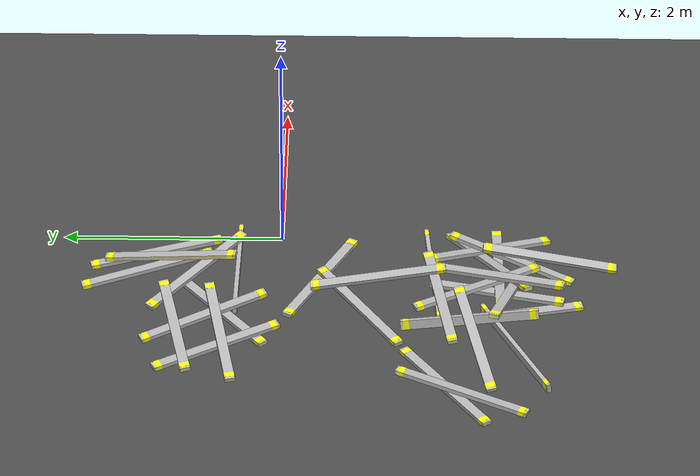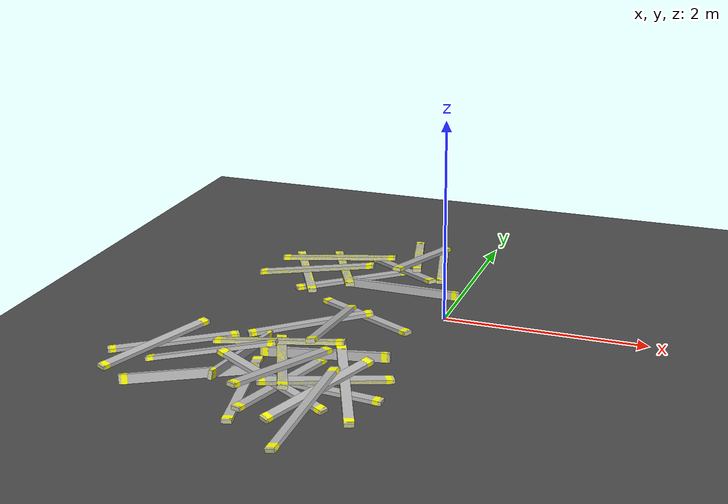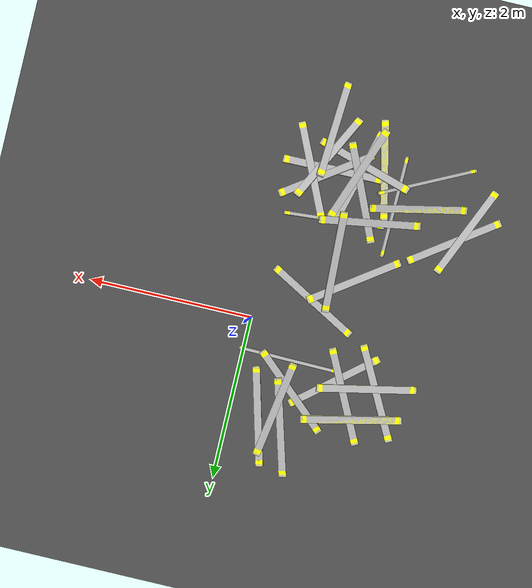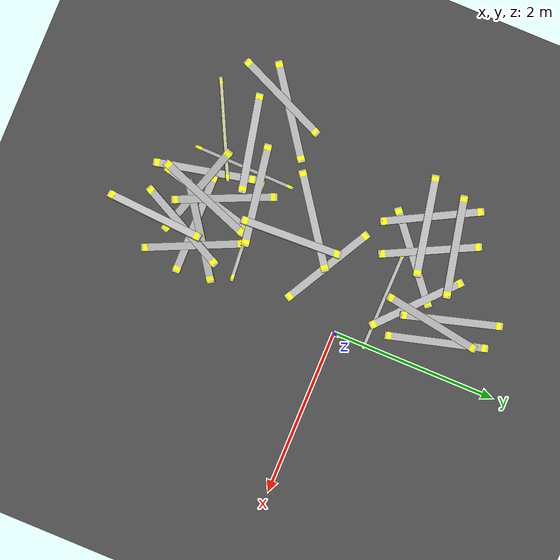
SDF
<sdf version="1.6">
 <world name="default">
  <model name="ground_plane">
   <static>1</static>
   <link name="link">
    <collision name="collision">
     <geometry><plane><normal>0 0 1</normal><size>100 100</size></plane></geometry>
     <surface><friction><ode><mu>100</mu><mu2>50</mu2></ode></friction></surface>
    </collision>
    <visual name="visual">
     <cast_shadows>0</cast_shadows>
     <geometry><plane><normal>0 0 1</normal><size>100 100</size></plane></geometry>
     <material>
      <script><uri>file://media/materials/scripts/gazebo.material</uri><name>Gazebo/Grey</name></script>
     </material>
    </visual>
   </link>
  </model>
  <model name="asphalt_plane">
   <static>1</static>
   <link name="link">
    <collision name="collision"><geometry><box><size>20 20 0.1</size></box></geometry></collision>
    <visual name="visual">
     <cast_shadows>0</cast_shadows>
     <geometry><box><size>20 20 0.1</size></box></geometry>
     <material>
      <script>
       <uri>model://asphalt_plane/materials/scripts</uri>
       <uri>model://asphalt_plane/materials/textures</uri>
       <name>vrc/asphalt</name>
      </script>
     </material>
    </visual>
   </link>
   <pose>0.013797 -0.037077 0 0 -0 0</pose>
  </model>
  <model name="lumber_2x4x48_clone">
   <link name="link">
    <inertial>
     <mass>1.4111</mass>
     <inertia><ixx>0.0011</ixx><ixy>0</ixy><ixz>0</ixz><iyy>0.1771</iyy><iyz>0</iyz><izz>0.1763</izz></inertia>
    </inertial>
    <collision name="collision">
     <geometry><box><size>1.2192 0.038 0.0888</size></box></geometry>
     <surface>
      <bounce><restitution_coefficient>0.01</restitution_coefficient><threshold>5</threshold></bounce>
      <friction><ode><mu>5</mu><mu2>5</mu2></ode></friction>
      <contact>
       <ode>
        <soft_cfm>0.001</soft_cfm>
        <kp>10000</kp>
        <kd>1000</kd>
        <max_vel>0.01</max_vel>
        <min_depth>0.001</min_depth>
       </ode>
      </contact>
     </surface>
    </collision>
    <visual name="visual">
     <geometry><mesh><uri>model://drc_practice_2x4/meshes/2x4x48.dae</uri><scale>1 1 1</scale></mesh></geometry>
    </visual>
   </link>
   <pose>-0.564864 0.384728 0.092496 -0.007207 -0.000868 -0.013665</pose>
  </model>
  <model name="lumber_2x4x48_clone_3_clone">
   <link name="link">
    <inertial>
     <mass>1.4111</mass>
     <inertia><ixx>0.0011</ixx><ixy>0</ixy><ixz>0</ixz><iyy>0.1771</iyy><iyz>0</iyz><izz>0.1763</izz></inertia>
    </inertial>
    <collision name="collision">
     <geometry><box><size>1.2192 0.038 0.0888</size></box></geometry>
     <surface>
      <bounce><restitution_coefficient>0.01</restitution_coefficient><threshold>5</threshold></bounce>
      <friction><ode><mu>5</mu><mu2>5</mu2></ode></friction>
      <contact>
       <ode>
        <soft_cfm>0.001</soft_cfm>
        <kp>10000</kp>
        <kd>1000</kd>
        <max_vel>0.01</max_vel>
        <min_depth>0.001</min_depth>
       </ode>
      </contact>
     </surface>
    </collision>
    <visual name="visual">
     <geometry><mesh><uri>model://drc_practice_2x4/meshes/2x4x48.dae</uri><scale>1 1 1</scale></mesh></geometry>
    </visual>
   </link>
   <pose>-0.674043 0.751527 0.149977 1.57744 -0.1359 -0.743056</pose>
  </model>
  <model name="lumber_2x4x48_clone_3_clone_0_clone_1">
   <link name="link">
    <inertial>
     <mass>1.4111</mass>
     <inertia><ixx>0.0011</ixx><ixy>0</ixy><ixz>0</ixz><iyy>0.1771</iyy><iyz>0</iyz><izz>0.1763</izz></inertia>
    </inertial>
    <collision name="collision">
     <geometry><box><size>1.2192 0.038 0.0888</size></box></geometry>
     <surface>
      <bounce><restitution_coefficient>0.01</restitution_coefficient><threshold>5</threshold></bounce>
      <friction><ode><mu>5</mu><mu2>5</mu2></ode></friction>
      <contact>
       <ode>
        <soft_cfm>0.001</soft_cfm>
        <kp>10000</kp>
        <kd>1000</kd>
        <max_vel>0.01</max_vel>
        <min_depth>0.001</min_depth>
       </ode>
      </contact>
     </surface>
    </collision>
    <visual name="visual">
     <geometry><mesh><uri>model://drc_practice_2x4/meshes/2x4x48.dae</uri><scale>1 1 1</scale></mesh></geometry>
    </visual>
   </link>
   <pose>-0.537406 0.992412 0.205722 1.6002 0.149051 1.41579</pose>
  </model>
  <model name="lumber_2x4x48_clone_1_clone">
   <link name="link">
    <inertial>
     <mass>1.4111</mass>
     <inertia><ixx>0.0011</ixx><ixy>0</ixy><ixz>0</ixz><iyy>0.1771</iyy><iyz>0</iyz><izz>0.1763</izz></inertia>
    </inertial>
    <collision name="collision">
     <geometry><box><size>1.2192 0.038 0.0888</size></box></geometry>
     <surface>
      <bounce><restitution_coefficient>0.01</restitution_coefficient><threshold>5</threshold></bounce>
      <friction><ode><mu>5</mu><mu2>5</mu2></ode></friction>
      <contact>
       <ode>
        <soft_cfm>0.001</soft_cfm>
        <kp>10000</kp>
        <kd>1000</kd>
        <max_vel>0.01</max_vel>
        <min_depth>0.001</min_depth>
       </ode>
      </contact>
     </surface>
    </collision>
    <visual name="visual">
     <geometry><mesh><uri>model://drc_practice_2x4/meshes/2x4x48.dae</uri><scale>1 1 1</scale></mesh></geometry>
    </visual>
   </link>
   <pose>-0.552245 -1.96534 0.103874 -1.57616 0.05943 0.001184</pose>
  </model>
  <model name="lumber_2x4x48_clone_3_clone_0_clone_0_clone">
   <link name="link">
    <inertial>
     <mass>1.4111</mass>
     <inertia><ixx>0.0011</ixx><ixy>0</ixy><ixz>0</ixz><iyy>0.1771</iyy><iyz>0</iyz><izz>0.1763</izz></inertia>
    </inertial>
    <collision name="collision">
     <geometry><box><size>1.2192 0.038 0.0888</size></box></geometry>
     <surface>
      <bounce><restitution_coefficient>0.01</restitution_coefficient><threshold>5</threshold></bounce>
      <friction><ode><mu>5</mu><mu2>5</mu2></ode></friction>
      <contact>
       <ode>
        <soft_cfm>0.001</soft_cfm>
        <kp>10000</kp>
        <kd>1000</kd>
        <max_vel>0.01</max_vel>
        <min_depth>0.001</min_depth>
       </ode>
      </contact>
     </surface>
    </collision>
    <visual name="visual">
     <geometry><mesh><uri>model://drc_practice_2x4/meshes/2x4x48.dae</uri><scale>1 1 1</scale></mesh></geometry>
    </visual>
   </link>
   <pose>-0.490868 -1.87586 0.141864 1.65409 0.123403 0.596649</pose>
  </model>
  <model name="lumber_2x4x48_clone_3_clone_0_clone_0_clone_0_clone">
   <link name="link">
    <inertial>
     <mass>1.4111</mass>
     <inertia><ixx>0.0011</ixx><ixy>0</ixy><ixz>0</ixz><iyy>0.1771</iyy><iyz>0</iyz><izz>0.1763</izz></inertia>
    </inertial>
    <collision name="collision">
     <geometry><box><size>1.2192 0.038 0.0888</size></box></geometry>
     <surface>
      <bounce><restitution_coefficient>0.01</restitution_coefficient><threshold>5</threshold></bounce>
      <friction><ode><mu>5</mu><mu2>5</mu2></ode></friction>
      <contact>
       <ode>
        <soft_cfm>0.001</soft_cfm>
        <kp>10000</kp>
        <kd>1000</kd>
        <max_vel>0.01</max_vel>
        <min_depth>0.001</min_depth>
       </ode>
      </contact>
     </surface>
    </collision>
    <visual name="visual">
     <geometry><mesh><uri>model://drc_practice_2x4/meshes/2x4x48.dae</uri><scale>1 1 1</scale></mesh></geometry>
    </visual>
   </link>
   <pose>-0.910553 -2.08308 0.17327 1.59514 -0.177146 2.81027</pose>
  </model>
  <model name="lumber_2x4x48_clone_0_clone">
   <link name="link">
    <inertial>
     <mass>1.4111</mass>
     <inertia><ixx>0.0011</ixx><ixy>0</ixy><ixz>0</ixz><iyy>0.1771</iyy><iyz>0</iyz><izz>0.1763</izz></inertia>
    </inertial>
    <collision name="collision">
     <geometry><box><size>1.2192 0.038 0.0888</size></box></geometry>
     <surface>
      <bounce><restitution_coefficient>0.01</restitution_coefficient><threshold>5</threshold></bounce>
      <friction><ode><mu>5</mu><mu2>5</mu2></ode></friction>
      <contact>
       <ode>
        <soft_cfm>0.001</soft_cfm>
        <kp>10000</kp>
        <kd>1000</kd>
        <max_vel>0.01</max_vel>
        <min_depth>0.001</min_depth>
       </ode>
      </contact>
     </surface>
    </collision>
    <visual name="visual">
     <geometry><mesh><uri>model://drc_practice_2x4/meshes/2x4x48.dae</uri><scale>1 1 1</scale></mesh></geometry>
    </visual>
   </link>
   <pose>-0.705249 -1.37117 0.129469 -0.045649 -0.058121 0.084421</pose>
  </model>
  <model name="lumber_2x4x48_clone_3_clone_0_clone_1_clone">
   <link name="link">
    <inertial>
     <mass>1.4111</mass>
     <inertia><ixx>0.0011</ixx><ixy>0</ixy><ixz>0</ixz><iyy>0.1771</iyy><iyz>0</iyz><izz>0.1763</izz></inertia>
    </inertial>
    <collision name="collision">
     <geometry><box><size>1.2192 0.038 0.0888</size></box></geometry>
     <surface>
      <bounce><restitution_coefficient>0.01</restitution_coefficient><threshold>5</threshold></bounce>
      <friction><ode><mu>5</mu><mu2>5</mu2></ode></friction>
      <contact>
       <ode>
        <soft_cfm>0.001</soft_cfm>
        <kp>10000</kp>
        <kd>1000</kd>
        <max_vel>0.01</max_vel>
        <min_depth>0.001</min_depth>
       </ode>
      </contact>
     </surface>
    </collision>
    <visual name="visual">
     <geometry><mesh><uri>model://drc_practice_2x4/meshes/2x4x48.dae</uri><scale>1 1 1</scale></mesh></geometry>
    </visual>
   </link>
   <pose>-0.878303 -1.94447 0.085207 1.57495 0.030914 1.31319</pose>
  </model>
  <model name="lumber_2x4x48_clone_3_clone_0_clone_1_clone_clone_1">
   <link name="link">
    <inertial>
     <mass>1.4111</mass>
     <inertia><ixx>0.0011</ixx><ixy>0</ixy><ixz>0</ixz><iyy>0.1771</iyy><iyz>0</iyz><izz>0.1763</izz></inertia>
    </inertial>
    <collision name="collision">
     <geometry><box><size>1.2192 0.038 0.0888</size></box></geometry>
     <surface>
      <bounce><restitution_coefficient>0.01</restitution_coefficient><threshold>5</threshold></bounce>
      <friction><ode><mu>5</mu><mu2>5</mu2></ode></friction>
      <contact>
       <ode>
        <soft_cfm>0.001</soft_cfm>
        <kp>10000</kp>
        <kd>1000</kd>
        <max_vel>0.01</max_vel>
        <min_depth>0.001</min_depth>
       </ode>
      </contact>
     </surface>
    </collision>
    <visual name="visual">
     <geometry><mesh><uri>model://drc_practice_2x4/meshes/2x4x48.dae</uri><scale>1 1 1</scale></mesh></geometry>
    </visual>
   </link>
   <pose>-1.37426 -1.6826 0.167838 -2.99827 0.120608 1.5626</pose>
  </model>
  <model name="lumber_2x4x48_clone_3_clone_0_clone_1_clone_clone_2">
   <link name="link">
    <inertial>
     <mass>1.4111</mass>
     <inertia><ixx>0.0011</ixx><ixy>0</ixy><ixz>0</ixz><iyy>0.1771</iyy><iyz>0</iyz><izz>0.1763</izz></inertia>
    </inertial>
    <collision name="collision">
     <geometry><box><size>1.2192 0.038 0.0888</size></box></geometry>
     <surface>
      <bounce><restitution_coefficient>0.01</restitution_coefficient><threshold>5</threshold></bounce>
      <friction><ode><mu>5</mu><mu2>5</mu2></ode></friction>
      <contact>
       <ode>
        <soft_cfm>0.001</soft_cfm>
        <kp>10000</kp>
        <kd>1000</kd>
        <max_vel>0.01</max_vel>
        <min_depth>0.001</min_depth>
       </ode>
      </contact>
     </surface>
    </collision>
    <visual name="visual">
     <geometry><mesh><uri>model://drc_practice_2x4/meshes/2x4x48.dae</uri><scale>1 1 1</scale></mesh></geometry>
    </visual>
   </link>
   <pose>-1.6908 -2.07649 0.107607 -0.145105 -0.021794 0.461435</pose>
  </model>
  <model name="lumber_2x4x48_clone_3_clone_0_clone_clone">
   <link name="link">
    <inertial>
     <mass>1.4111</mass>
     <inertia><ixx>0.0011</ixx><ixy>0</ixy><ixz>0</ixz><iyy>0.1771</iyy><iyz>0</iyz><izz>0.1763</izz></inertia>
    </inertial>
    <collision name="collision">
     <geometry><box><size>1.2192 0.038 0.0888</size></box></geometry>
     <surface>
      <bounce><restitution_coefficient>0.01</restitution_coefficient><threshold>5</threshold></bounce>
      <friction><ode><mu>5</mu><mu2>5</mu2></ode></friction>
      <contact>
       <ode>
        <soft_cfm>0.001</soft_cfm>
        <kp>10000</kp>
        <kd>1000</kd>
        <max_vel>0.01</max_vel>
        <min_depth>0.001</min_depth>
       </ode>
      </contact>
     </surface>
    </collision>
    <visual name="visual">
     <geometry><mesh><uri>model://drc_practice_2x4/meshes/2x4x48.dae</uri><scale>1 1 1</scale></mesh></geometry>
    </visual>
   </link>
   <pose>-2.18032 -1.45176 0.067309 1.57859 -0.000151 0.618251</pose>
  </model>
  <model name="lumber_2x4x48_clone_3_clone_0_clone_1_clone_clone_4">
   <link name="link">
    <inertial>
     <mass>1.4111</mass>
     <inertia><ixx>0.0011</ixx><ixy>0</ixy><ixz>0</ixz><iyy>0.1771</iyy><iyz>0</iyz><izz>0.1763</izz></inertia>
    </inertial>
    <collision name="collision">
     <geometry><box><size>1.2192 0.038 0.0888</size></box></geometry>
     <surface>
      <bounce><restitution_coefficient>0.01</restitution_coefficient><threshold>5</threshold></bounce>
      <friction><ode><mu>5</mu><mu2>5</mu2></ode></friction>
      <contact>
       <ode>
        <soft_cfm>0.001</soft_cfm>
        <kp>10000</kp>
        <kd>1000</kd>
        <max_vel>0.01</max_vel>
        <min_depth>0.001</min_depth>
       </ode>
      </contact>
     </surface>
    </collision>
    <visual name="visual">
     <geometry><mesh><uri>model://drc_practice_2x4/meshes/2x4x48.dae</uri><scale>1 1 1</scale></mesh></geometry>
    </visual>
   </link>
   <pose>-1.15883 0.514233 0.067235 1.56237 -0.000504 0.690627</pose>
  </model>
  <model name="lumber_2x4x48_clone_3_clone_0_clone_clone_0_clone_0">
   <link name="link">
    <inertial>
     <mass>1.4111</mass>
     <inertia><ixx>0.0011</ixx><ixy>0</ixy><ixz>0</ixz><iyy>0.1771</iyy><iyz>0</iyz><izz>0.1763</izz></inertia>
    </inertial>
    <collision name="collision">
     <geometry><box><size>1.2192 0.038 0.0888</size></box></geometry>
     <surface>
      <bounce><restitution_coefficient>0.01</restitution_coefficient><threshold>5</threshold></bounce>
      <friction><ode><mu>5</mu><mu2>5</mu2></ode></friction>
      <contact>
       <ode>
        <soft_cfm>0.001</soft_cfm>
        <kp>10000</kp>
        <kd>1000</kd>
        <max_vel>0.01</max_vel>
        <min_depth>0.001</min_depth>
       </ode>
      </contact>
     </surface>
    </collision>
    <visual name="visual">
     <geometry><mesh><uri>model://drc_practice_2x4/meshes/2x4x48.dae</uri><scale>1 1 1</scale></mesh></geometry>
    </visual>
   </link>
   <pose>-0.951506 -1.75516 0.201388 -1.68183 -0.072826 -1.14794</pose>
  </model>
  <model name="lumber_2x4x48_clone_3_clone_0_clone_clone_0_clone_0_clone_0">
   <link name="link">
    <inertial>
     <mass>1.4111</mass>
     <inertia><ixx>0.0011</ixx><ixy>0</ixy><ixz>0</ixz><iyy>0.1771</iyy><iyz>0</iyz><izz>0.1763</izz></inertia>
    </inertial>
    <collision name="collision">
     <geometry><box><size>1.2192 0.038 0.0888</size></box></geometry>
     <surface>
      <bounce><restitution_coefficient>0.01</restitution_coefficient><threshold>5</threshold></bounce>
      <friction><ode><mu>5</mu><mu2>5</mu2></ode></friction>
      <contact>
       <ode>
        <soft_cfm>0.001</soft_cfm>
        <kp>10000</kp>
        <kd>1000</kd>
        <max_vel>0.01</max_vel>
        <min_depth>0.001</min_depth>
       </ode>
      </contact>
     </surface>
    </collision>
    <visual name="visual">
     <geometry><mesh><uri>model://drc_practice_2x4/meshes/2x4x48.dae</uri><scale>1 1 1</scale></mesh></geometry>
    </visual>
   </link>
   <pose>-0.826201 -0.876732 0.209113 -1.42504 -0.138994 -1.52235</pose>
  </model>
  <model name="lumber_2x4x48_clone_3_clone_0_clone_clone_0_clone_0_clone_2">
   <link name="link">
    <inertial>
     <mass>1.4111</mass>
     <inertia><ixx>0.0011</ixx><ixy>0</ixy><ixz>0</ixz><iyy>0.1771</iyy><iyz>0</iyz><izz>0.1763</izz></inertia>
    </inertial>
    <collision name="collision">
     <geometry><box><size>1.2192 0.038 0.0888</size></box></geometry>
     <surface>
      <bounce><restitution_coefficient>0.01</restitution_coefficient><threshold>5</threshold></bounce>
      <friction><ode><mu>5</mu><mu2>5</mu2></ode></friction>
      <contact>
       <ode>
        <soft_cfm>0.001</soft_cfm>
        <kp>10000</kp>
        <kd>1000</kd>
        <max_vel>0.01</max_vel>
        <min_depth>0.001</min_depth>
       </ode>
      </contact>
     </surface>
    </collision>
    <visual name="visual">
     <geometry><mesh><uri>model://drc_practice_2x4/meshes/2x4x48.dae</uri><scale>1 1 1</scale></mesh></geometry>
    </visual>
   </link>
   <pose>-1.16415 -2.10264 0.065621 -1.54871 -0.000851 -1.35558</pose>
  </model>
  <model name="lumber_2x4x48_clone_3_clone_0_clone_clone_0_clone_0_clone_3">
   <link name="link">
    <inertial>
     <mass>1.4111</mass>
     <inertia><ixx>0.0011</ixx><ixy>0</ixy><ixz>0</ixz><iyy>0.1771</iyy><iyz>0</iyz><izz>0.1763</izz></inertia>
    </inertial>
    <collision name="collision">
     <geometry><box><size>1.2192 0.038 0.0888</size></box></geometry>
     <surface>
      <bounce><restitution_coefficient>0.01</restitution_coefficient><threshold>5</threshold></bounce>
      <friction><ode><mu>5</mu><mu2>5</mu2></ode></friction>
      <contact>
       <ode>
        <soft_cfm>0.001</soft_cfm>
        <kp>10000</kp>
        <kd>1000</kd>
        <max_vel>0.01</max_vel>
        <min_depth>0.001</min_depth>
       </ode>
      </contact>
     </surface>
    </collision>
    <visual name="visual">
     <geometry><mesh><uri>model://drc_practice_2x4/meshes/2x4x48.dae</uri><scale>1 1 1</scale></mesh></geometry>
    </visual>
   </link>
   <pose>-0.358617 1.13395 0.109704 -1.58675 -0.06813 -1.31067</pose>
  </model>
  <model name="lumber_2x4x48_clone_3_clone_0_clone_clone_0_clone_0_clone_6">
   <link name="link">
    <inertial>
     <mass>1.4111</mass>
     <inertia><ixx>0.0011</ixx><ixy>0</ixy><ixz>0</ixz><iyy>0.1771</iyy><iyz>0</iyz><izz>0.1763</izz></inertia>
    </inertial>
    <collision name="collision">
     <geometry><box><size>1.2192 0.038 0.0888</size></box></geometry>
     <surface>
      <bounce><restitution_coefficient>0.01</restitution_coefficient><threshold>5</threshold></bounce>
      <friction><ode><mu>5</mu><mu2>5</mu2></ode></friction>
      <contact>
       <ode>
        <soft_cfm>0.001</soft_cfm>
        <kp>10000</kp>
        <kd>1000</kd>
        <max_vel>0.01</max_vel>
        <min_depth>0.001</min_depth>
       </ode>
      </contact>
     </surface>
    </collision>
    <visual name="visual">
     <geometry><mesh><uri>model://drc_practice_2x4/meshes/2x4x48.dae</uri><scale>1 1 1</scale></mesh></geometry>
    </visual>
   </link>
   <pose>-1.682 0.538762 0.090299 -1.56152 -0.037253 -1.08115</pose>
  </model>
  <model name="lumber_2x4x48_clone_3_clone_0_clone_clone_0_clone_0_clone_7">
   <link name="link">
    <inertial>
     <mass>1.4111</mass>
     <inertia><ixx>0.0011</ixx><ixy>0</ixy><ixz>0</ixz><iyy>0.1771</iyy><iyz>0</iyz><izz>0.1763</izz></inertia>
    </inertial>
    <collision name="collision">
     <geometry><box><size>1.2192 0.038 0.0888</size></box></geometry>
     <surface>
      <bounce><restitution_coefficient>0.01</restitution_coefficient><threshold>5</threshold></bounce>
      <friction><ode><mu>5</mu><mu2>5</mu2></ode></friction>
      <contact>
       <ode>
        <soft_cfm>0.001</soft_cfm>
        <kp>10000</kp>
        <kd>1000</kd>
        <max_vel>0.01</max_vel>
        <min_depth>0.001</min_depth>
       </ode>
      </contact>
     </surface>
    </collision>
    <visual name="visual">
     <geometry><mesh><uri>model://drc_practice_2x4/meshes/2x4x48.dae</uri><scale>1 1 1</scale></mesh></geometry>
    </visual>
   </link>
   <pose>-1.30557 0.664331 0.124342 -1.55724 -0.093999 -1.10544</pose>
  </model>
  <model name="lumber_2x4x48_clone_3_clone_0_clone_clone_0_clone_0_clone_0_clone">
   <link name="link">
    <inertial>
     <mass>1.4111</mass>
     <inertia><ixx>0.0011</ixx><ixy>0</ixy><ixz>0</ixz><iyy>0.1771</iyy><iyz>0</iyz><izz>0.1763</izz></inertia>
    </inertial>
    <collision name="collision">
     <geometry><box><size>1.2192 0.038 0.0888</size></box></geometry>
     <surface>
      <bounce><restitution_coefficient>0.01</restitution_coefficient><threshold>5</threshold></bounce>
      <friction><ode><mu>5</mu><mu2>5</mu2></ode></friction>
      <contact>
       <ode>
        <soft_cfm>0.001</soft_cfm>
        <kp>10000</kp>
        <kd>1000</kd>
        <max_vel>0.01</max_vel>
        <min_depth>0.001</min_depth>
       </ode>
      </contact>
     </surface>
    </collision>
    <visual name="visual">
     <geometry><mesh><uri>model://drc_practice_2x4/meshes/2x4x48.dae</uri><scale>1 1 1</scale></mesh></geometry>
    </visual>
   </link>
   <pose>-0.686169 -0.364128 0.0881 -1.57634 -0.033813 -0.505772</pose>
  </model>
  <model name="lumber_2x4x48_clone_3_clone_0_clone_clone_0_clone_0_clone_0_clone_0">
   <link name="link">
    <inertial>
     <mass>1.4111</mass>
     <inertia><ixx>0.0011</ixx><ixy>0</ixy><ixz>0</ixz><iyy>0.1771</iyy><iyz>0</iyz><izz>0.1763</izz></inertia>
    </inertial>
    <collision name="collision">
     <geometry><box><size>1.2192 0.038 0.0888</size></box></geometry>
     <surface>
      <bounce><restitution_coefficient>0.01</restitution_coefficient><threshold>5</threshold></bounce>
      <friction><ode><mu>5</mu><mu2>5</mu2></ode></friction>
      <contact>
       <ode>
        <soft_cfm>0.001</soft_cfm>
        <kp>10000</kp>
        <kd>1000</kd>
        <max_vel>0.01</max_vel>
        <min_depth>0.001</min_depth>
       </ode>
      </contact>
     </surface>
    </collision>
    <visual name="visual">
     <geometry><mesh><uri>model://drc_practice_2x4/meshes/2x4x48.dae</uri><scale>1 1 1</scale></mesh></geometry>
    </visual>
   </link>
   <pose>-0.310542 -1.8887 0.141755 -1.63767 0.119748 -1.14851</pose>
  </model>
  <model name="lumber_2x4x48_clone_3_clone_0_clone_clone_0_clone_0_clone_9">
   <link name="link">
    <inertial>
     <mass>1.4111</mass>
     <inertia><ixx>0.0011</ixx><ixy>0</ixy><ixz>0</ixz><iyy>0.1771</iyy><iyz>0</iyz><izz>0.1763</izz></inertia>
    </inertial>
    <collision name="collision">
     <geometry><box><size>1.2192 0.038 0.0888</size></box></geometry>
     <surface>
      <bounce><restitution_coefficient>0.01</restitution_coefficient><threshold>5</threshold></bounce>
      <friction><ode><mu>5</mu><mu2>5</mu2></ode></friction>
      <contact>
       <ode>
        <soft_cfm>0.001</soft_cfm>
        <kp>10000</kp>
        <kd>1000</kd>
        <max_vel>0.01</max_vel>
        <min_depth>0.001</min_depth>
       </ode>
      </contact>
     </surface>
    </collision>
    <visual name="visual">
     <geometry><mesh><uri>model://drc_practice_2x4/meshes/2x4x48.dae</uri><scale>1 1 1</scale></mesh></geometry>
    </visual>
   </link>
   <pose>-0.650578 1.19857 0.142326 -1.57752 -0.123374 -1.29383</pose>
  </model>
  <model name="lumber_2x4x48_clone_3_clone_0_clone_clone_0_clone_0_clone_11_clone_0">
   <link name="link">
    <inertial>
     <mass>1.4111</mass>
     <inertia><ixx>0.0011</ixx><ixy>0</ixy><ixz>0</ixz><iyy>0.1771</iyy><iyz>0</iyz><izz>0.1763</izz></inertia>
    </inertial>
    <collision name="collision">
     <geometry><box><size>1.2192 0.038 0.0888</size></box></geometry>
     <surface>
      <bounce><restitution_coefficient>0.01</restitution_coefficient><threshold>5</threshold></bounce>
      <friction><ode><mu>5</mu><mu2>5</mu2></ode></friction>
      <contact>
       <ode>
        <soft_cfm>0.001</soft_cfm>
        <kp>10000</kp>
        <kd>1000</kd>
        <max_vel>0.01</max_vel>
        <min_depth>0.001</min_depth>
       </ode>
      </contact>
     </surface>
    </collision>
    <visual name="visual">
     <geometry><mesh><uri>model://drc_practice_2x4/meshes/2x4x48.dae</uri><scale>1 1 1</scale></mesh></geometry>
    </visual>
   </link>
   <pose>-0.859533 -1.95688 0.255075 1.57326 -0.099114 -1.92664</pose>
  </model>
  <model name="lumber_2x4x48_clone_3_clone_0_clone_clone_0_clone_0_clone_11_clone_3">
   <link name="link">
    <inertial>
     <mass>1.4111</mass>
     <inertia><ixx>0.0011</ixx><ixy>0</ixy><ixz>0</ixz><iyy>0.1771</iyy><iyz>0</iyz><izz>0.1763</izz></inertia>
    </inertial>
    <collision name="collision">
     <geometry><box><size>1.2192 0.038 0.0888</size></box></geometry>
     <surface>
      <bounce><restitution_coefficient>0.01</restitution_coefficient><threshold>5</threshold></bounce>
      <friction><ode><mu>5</mu><mu2>5</mu2></ode></friction>
      <contact>
       <ode>
        <soft_cfm>0.001</soft_cfm>
        <kp>10000</kp>
        <kd>1000</kd>
        <max_vel>0.01</max_vel>
        <min_depth>0.001</min_depth>
       </ode>
      </contact>
     </surface>
    </collision>
    <visual name="visual">
     <geometry><mesh><uri>model://drc_practice_2x4/meshes/2x4x48.dae</uri><scale>1 1 1</scale></mesh></geometry>
    </visual>
   </link>
   <pose>-0.458536 -2.42986 0.161936 -1.33478 0.139131 -1.6368</pose>
  </model>
  <model name="lumber_2x4x48_clone_3_clone_0_clone_clone_0_clone_0_clone_11_clone_4">
   <link name="link">
    <inertial>
     <mass>1.4111</mass>
     <inertia><ixx>0.0011</ixx><ixy>0</ixy><ixz>0</ixz><iyy>0.1771</iyy><iyz>0</iyz><izz>0.1763</izz></inertia>
    </inertial>
    <collision name="collision">
     <geometry><box><size>1.2192 0.038 0.0888</size></box></geometry>
     <surface>
      <bounce><restitution_coefficient>0.01</restitution_coefficient><threshold>5</threshold></bounce>
      <friction><ode><mu>5</mu><mu2>5</mu2></ode></friction>
      <contact>
       <ode>
        <soft_cfm>0.001</soft_cfm>
        <kp>10000</kp>
        <kd>1000</kd>
        <max_vel>0.01</max_vel>
        <min_depth>0.001</min_depth>
       </ode>
      </contact>
     </surface>
    </collision>
    <visual name="visual">
     <geometry><mesh><uri>model://drc_practice_2x4/meshes/2x4x48.dae</uri><scale>1 1 1</scale></mesh></geometry>
    </visual>
   </link>
   <pose>-0.471385 -2.08492 0.162718 -1.68953 0.101679 -2.03358</pose>
  </model>
  <model name="lumber_2x4x48_clone_3_clone_0_clone_clone_0_clone_0_clone_11_clone_14_clone_clone_3">
   <link name="link">
    <inertial>
     <mass>1.4111</mass>
     <inertia><ixx>0.0011</ixx><ixy>0</ixy><ixz>0</ixz><iyy>0.1771</iyy><iyz>0</iyz><izz>0.1763</izz></inertia>
    </inertial>
    <collision name="collision">
     <geometry><box><size>1.2192 0.038 0.0888</size></box></geometry>
     <surface>
      <bounce><restitution_coefficient>0.01</restitution_coefficient><threshold>5</threshold></bounce>
      <friction><ode><mu>5</mu><mu2>5</mu2></ode></friction>
      <contact>
       <ode>
        <soft_cfm>0.001</soft_cfm>
        <kp>10000</kp>
        <kd>1000</kd>
        <max_vel>0.01</max_vel>
        <min_depth>0.001</min_depth>
       </ode>
      </contact>
     </surface>
    </collision>
    <visual name="visual">
     <geometry><mesh><uri>model://drc_practice_2x4/meshes/2x4x48.dae</uri><scale>1 1 1</scale></mesh></geometry>
    </visual>
   </link>
   <pose>-1.55154 0.511651 0.14378 1.57664 0.108554 -2.94857</pose>
  </model>
  <model name="lumber_2x4x48_clone_3_clone_0_clone_clone_0_clone_0_clone_11_clone_14_clone_clone_4">
   <link name="link">
    <inertial>
     <mass>1.4111</mass>
     <inertia><ixx>0.0011</ixx><ixy>0</ixy><ixz>0</ixz><iyy>0.1771</iyy><iyz>0</iyz><izz>0.1763</izz></inertia>
    </inertial>
    <collision name="collision">
     <geometry><box><size>1.2192 0.038 0.0888</size></box></geometry>
     <surface>
      <bounce><restitution_coefficient>0.01</restitution_coefficient><threshold>5</threshold></bounce>
      <friction><ode><mu>5</mu><mu2>5</mu2></ode></friction>
      <contact>
       <ode>
        <soft_cfm>0.001</soft_cfm>
        <kp>10000</kp>
        <kd>1000</kd>
        <max_vel>0.01</max_vel>
        <min_depth>0.001</min_depth>
       </ode>
      </contact>
     </surface>
    </collision>
    <visual name="visual">
     <geometry><mesh><uri>model://drc_practice_2x4/meshes/2x4x48.dae</uri><scale>1 1 1</scale></mesh></geometry>
    </visual>
   </link>
   <pose>-1.6573 -1.72295 0.18025 1.73355 0.175079 -2.91514</pose>
  </model>
  <model name="lumber_2x4x48_clone_3_clone_0_clone_clone_0_clone_0_clone_11_clone_14_clone_clone_5">
   <link name="link">
    <inertial>
     <mass>1.4111</mass>
     <inertia><ixx>0.0011</ixx><ixy>0</ixy><ixz>0</ixz><iyy>0.1771</iyy><iyz>0</iyz><izz>0.1763</izz></inertia>
    </inertial>
    <collision name="collision">
     <geometry><box><size>1.2192 0.038 0.0888</size></box></geometry>
     <surface>
      <bounce><restitution_coefficient>0.01</restitution_coefficient><threshold>5</threshold></bounce>
      <friction><ode><mu>5</mu><mu2>5</mu2></ode></friction>
      <contact>
       <ode>
        <soft_cfm>0.001</soft_cfm>
        <kp>10000</kp>
        <kd>1000</kd>
        <max_vel>0.01</max_vel>
        <min_depth>0.001</min_depth>
       </ode>
      </contact>
     </surface>
    </collision>
    <visual name="visual">
     <geometry><mesh><uri>model://drc_practice_2x4/meshes/2x4x48.dae</uri><scale>1 1 1</scale></mesh></geometry>
    </visual>
   </link>
   <pose>-1.12409 -1.42787 0.220292 1.70338 0.056232 -2.97351</pose>
  </model>
  <model name="lumber_2x4x48_clone_3_clone_0_clone_clone_0_clone_0_clone_11_clone_14_clone_clone_8">
   <link name="link">
    <inertial>
     <mass>1.4111</mass>
     <inertia><ixx>0.0011</ixx><ixy>0</ixy><ixz>0</ixz><iyy>0.1771</iyy><iyz>0</iyz><izz>0.1763</izz></inertia>
    </inertial>
    <collision name="collision">
     <geometry><box><size>1.2192 0.038 0.0888</size></box></geometry>
     <surface>
      <bounce><restitution_coefficient>0.01</restitution_coefficient><threshold>5</threshold></bounce>
      <friction><ode><mu>5</mu><mu2>5</mu2></ode></friction>
      <contact>
       <ode>
        <soft_cfm>0.001</soft_cfm>
        <kp>10000</kp>
        <kd>1000</kd>
        <max_vel>0.01</max_vel>
        <min_depth>0.001</min_depth>
       </ode>
      </contact>
     </surface>
    </collision>
    <visual name="visual">
     <geometry><mesh><uri>model://drc_practice_2x4/meshes/2x4x48.dae</uri><scale>1 1 1</scale></mesh></geometry>
    </visual>
   </link>
   <pose>-1.45556 0.913595 0.133107 1.65833 0.037659 -2.92996</pose>
  </model>
  <model name="lumber_2x4x48_clone_3_clone_0_clone_clone_0_clone_0_clone_11_clone_clone_0">
   <link name="link">
    <inertial>
     <mass>1.4111</mass>
     <inertia><ixx>0.0011</ixx><ixy>0</ixy><ixz>0</ixz><iyy>0.1771</iyy><iyz>0</iyz><izz>0.1763</izz></inertia>
    </inertial>
    <collision name="collision">
     <geometry><box><size>1.2192 0.038 0.0888</size></box></geometry>
     <surface>
      <bounce><restitution_coefficient>0.01</restitution_coefficient><threshold>5</threshold></bounce>
      <friction><ode><mu>5</mu><mu2>5</mu2></ode></friction>
      <contact>
       <ode>
        <soft_cfm>0.001</soft_cfm>
        <kp>10000</kp>
        <kd>1000</kd>
        <max_vel>0.01</max_vel>
        <min_depth>0.001</min_depth>
       </ode>
      </contact>
     </surface>
    </collision>
    <visual name="visual">
     <geometry><mesh><uri>model://drc_practice_2x4/meshes/2x4x48.dae</uri><scale>1 1 1</scale></mesh></geometry>
    </visual>
   </link>
   <pose>-2.29317 -1.59685 0.101837 1.48709 0.049644 -1.98904</pose>
  </model>
  <model name="lumber_2x4x48_clone_3_clone_0_clone_clone_0_clone">
   <link name="link">
    <inertial>
     <mass>1.4111</mass>
     <inertia><ixx>0.0011</ixx><ixy>0</ixy><ixz>0</ixz><iyy>0.1771</iyy><iyz>0</iyz><izz>0.1763</izz></inertia>
    </inertial>
    <collision name="collision">
     <geometry><box><size>1.2192 0.038 0.0888</size></box></geometry>
     <surface>
      <bounce><restitution_coefficient>0.01</restitution_coefficient><threshold>5</threshold></bounce>
      <friction><ode><mu>5</mu><mu2>5</mu2></ode></friction>
      <contact>
       <ode>
        <soft_cfm>0.001</soft_cfm>
        <kp>10000</kp>
        <kd>1000</kd>
        <max_vel>0.01</max_vel>
        <min_depth>0.001</min_depth>
       </ode>
      </contact>
     </surface>
    </collision>
    <visual name="visual">
     <geometry><mesh><uri>model://drc_practice_2x4/meshes/2x4x48.dae</uri><scale>1 1 1</scale></mesh></geometry>
    </visual>
   </link>
   <pose>-1.11057 -0.711302 0.098597 1.55738 -0.050431 0.615455</pose>
  </model>
 </world>
</sdf>
